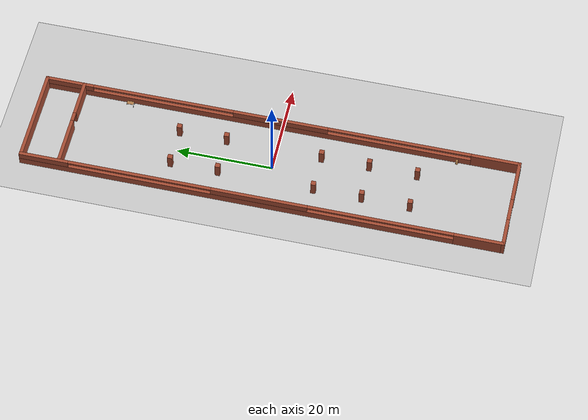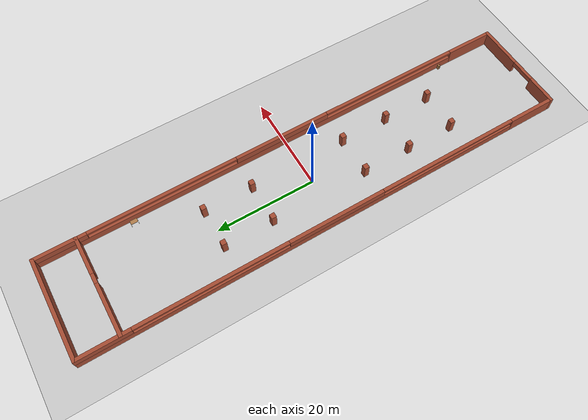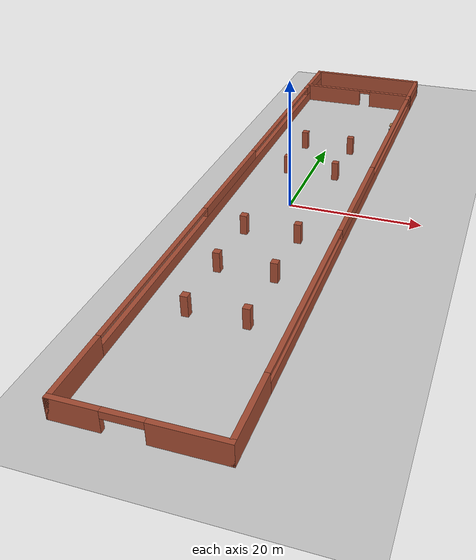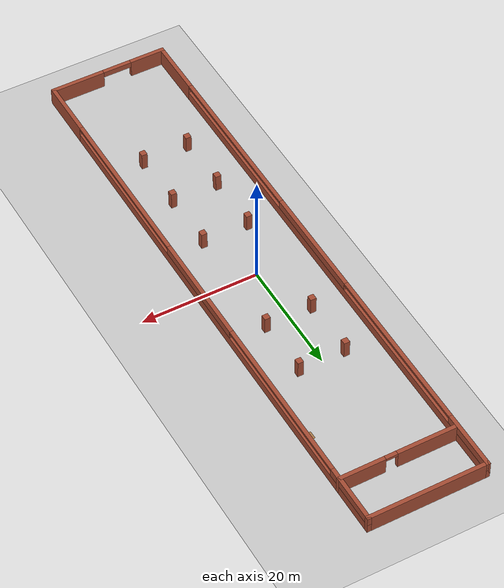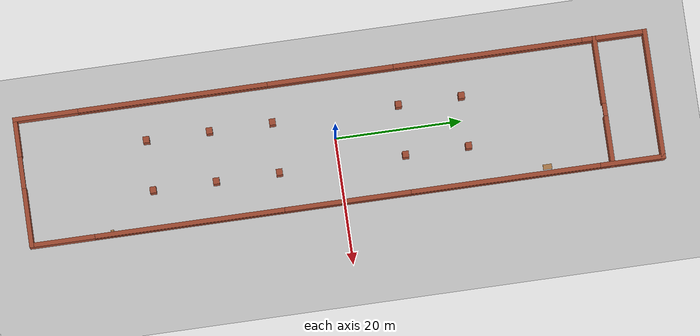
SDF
<sdf version="1.6">
 <world name="default">
  <model name="ground_plane">
   <static>1</static>
   <link name="link">
    <collision name="collision">
     <geometry><plane><normal>0 0 1</normal><size>100 100</size></plane></geometry>
     <surface><friction><ode><mu>100</mu><mu2>50</mu2></ode></friction></surface>
    </collision>
    <visual name="visual">
     <cast_shadows>0</cast_shadows>
     <geometry><plane><normal>0 0 1</normal><size>100 100</size></plane></geometry>
     <material>
      <script><uri>file://media/materials/scripts/gazebo.material</uri><name>Gazebo/Grey</name></script>
     </material>
    </visual>
   </link>
  </model>
  <model name="FactoryWorldModel">
   <pose>0.257008 0.5002 0 0 -0 0</pose>
   <link name="Wall_10">
    <pose>0 -50 0 0 -0 0</pose>
    <visual name="Wall_10_Visual_0">
     <pose>-7.19666 0 1.5 0 -0 0</pose>
     <geometry><box><size>6.30668 0.7 3</size></box></geometry>
     <material>
      <script><uri>file://media/materials/scripts/gazebo.material</uri><name>Gazebo/Bricks</name></script>
      <ambient>1 1 1 1</ambient>
     </material>
    </visual>
    <collision name="Wall_10_Collision_0">
     <geometry><box><size>6.30668 0.7 3</size></box></geometry>
     <pose>-7.19666 0 1.5 0 -0 0</pose>
    </collision>
    <visual name="Wall_10_Visual_1">
     <pose>5.65334 0 1.5 0 -0 0</pose>
     <geometry><box><size>9.39332 0.7 3</size></box></geometry>
     <material>
      <script><uri>file://media/materials/scripts/gazebo.material</uri><name>Gazebo/Bricks</name></script>
      <ambient>1 1 1 1</ambient>
     </material>
    </visual>
    <collision name="Wall_10_Collision_1">
     <geometry><box><size>9.39332 0.7 3</size></box></geometry>
     <pose>5.65334 0 1.5 0 -0 0</pose>
    </collision>
    <visual name="Wall_10_Visual_2">
     <pose>-1.54332 0 2.5 0 -0 0</pose>
     <geometry><box><size>5 0.7 1</size></box></geometry>
     <material>
      <script><uri>file://media/materials/scripts/gazebo.material</uri><name>Gazebo/Bricks</name></script>
      <ambient>1 1 1 1</ambient>
     </material>
    </visual>
    <collision name="Wall_10_Collision_2">
     <geometry><box><size>5 0.7 1</size></box></geometry>
     <pose>-1.54332 0 2.5 0 -0 0</pose>
    </collision>
   </link>
   <link name="Wall_14">
    <collision name="Wall_14_Collision">
     <geometry><box><size>1 1 3</size></box></geometry>
     <pose>0 0 1.5 0 -0 0</pose>
    </collision>
    <visual name="Wall_14_Visual">
     <pose>0 0 1.5 0 -0 0</pose>
     <geometry><box><size>1 1 3</size></box></geometry>
     <material>
      <script><uri>file://media/materials/scripts/gazebo.material</uri><name>Gazebo/Bricks</name></script>
      <ambient>1 1 1 1</ambient>
     </material>
    </visual>
    <pose>4 -30 0 0 -0 0</pose>
   </link>
   <link name="Wall_16">
    <collision name="Wall_16_Collision">
     <geometry><box><size>1 1 3</size></box></geometry>
     <pose>0 0 1.5 0 -0 0</pose>
    </collision>
    <visual name="Wall_16_Visual">
     <pose>0 0 1.5 0 -0 0</pose>
     <geometry><box><size>1 1 3</size></box></geometry>
     <material>
      <script><uri>file://media/materials/scripts/gazebo.material</uri><name>Gazebo/Bricks</name></script>
      <ambient>1 1 1 1</ambient>
     </material>
    </visual>
    <pose>-4 -30 0 0 -0 0</pose>
   </link>
   <link name="Wall_18">
    <collision name="Wall_18_Collision">
     <geometry><box><size>1 1 3</size></box></geometry>
     <pose>0 0 1.5 0 -0 0</pose>
    </collision>
    <visual name="Wall_18_Visual">
     <pose>0 0 1.5 0 -0 0</pose>
     <geometry><box><size>1 1 3</size></box></geometry>
     <material>
      <script><uri>file://media/materials/scripts/gazebo.material</uri><name>Gazebo/Bricks</name></script>
      <ambient>1 1 1 1</ambient>
     </material>
    </visual>
    <pose>-4 -20 0 0 -0 0</pose>
   </link>
   <link name="Wall_2">
    <collision name="Wall_2_Collision">
     <geometry><box><size>20.7 0.7 3</size></box></geometry>
     <pose>0 0 1.5 0 -0 0</pose>
    </collision>
    <visual name="Wall_2_Visual">
     <pose>0 0 1.5 0 -0 0</pose>
     <geometry><box><size>20.7 0.7 3</size></box></geometry>
     <material>
      <script><uri>file://media/materials/scripts/gazebo.material</uri><name>Gazebo/Bricks</name></script>
      <ambient>1 1 1 1</ambient>
     </material>
    </visual>
    <pose>0 50 0 0 -0 0</pose>
   </link>
   <link name="Wall_20">
    <collision name="Wall_20_Collision">
     <geometry><box><size>1 1 3</size></box></geometry>
     <pose>0 0 1.5 0 -0 0</pose>
    </collision>
    <visual name="Wall_20_Visual">
     <pose>0 0 1.5 0 -0 0</pose>
     <geometry><box><size>1 1 3</size></box></geometry>
     <material>
      <script><uri>file://media/materials/scripts/gazebo.material</uri><name>Gazebo/Bricks</name></script>
      <ambient>1 1 1 1</ambient>
     </material>
    </visual>
    <pose>4 -20 0 0 -0 0</pose>
   </link>
   <link name="Wall_22">
    <collision name="Wall_22_Collision">
     <geometry><box><size>1 1 3</size></box></geometry>
     <pose>0 0 1.5 0 -0 0</pose>
    </collision>
    <visual name="Wall_22_Visual">
     <pose>0 0 1.5 0 -0 0</pose>
     <geometry><box><size>1 1 3</size></box></geometry>
     <material>
      <script><uri>file://media/materials/scripts/gazebo.material</uri><name>Gazebo/Bricks</name></script>
      <ambient>1 1 1 1</ambient>
     </material>
    </visual>
    <pose>-4 -10 0 0 -0 0</pose>
   </link>
   <link name="Wall_24">
    <collision name="Wall_24_Collision">
     <geometry><box><size>1 1 3</size></box></geometry>
     <pose>0 0 1.5 0 -0 0</pose>
    </collision>
    <visual name="Wall_24_Visual">
     <pose>0 0 1.5 0 -0 0</pose>
     <geometry><box><size>1 1 3</size></box></geometry>
     <material>
      <script><uri>file://media/materials/scripts/gazebo.material</uri><name>Gazebo/Bricks</name></script>
      <ambient>1 1 1 1</ambient>
     </material>
    </visual>
    <pose>4 -10 0 0 -0 0</pose>
   </link>
   <link name="Wall_26">
    <collision name="Wall_26_Collision">
     <geometry><box><size>1 1 3</size></box></geometry>
     <pose>0 0 1.5 0 -0 0</pose>
    </collision>
    <visual name="Wall_26_Visual">
     <pose>0 0 1.5 0 -0 0</pose>
     <geometry><box><size>1 1 3</size></box></geometry>
     <material>
      <script><uri>file://media/materials/scripts/gazebo.material</uri><name>Gazebo/Bricks</name></script>
      <ambient>1 1 1 1</ambient>
     </material>
    </visual>
    <pose>-4 10 0 0 -0 0</pose>
   </link>
   <link name="Wall_28">
    <collision name="Wall_28_Collision">
     <geometry><box><size>1 1 3</size></box></geometry>
     <pose>0 0 1.5 0 -0 0</pose>
    </collision>
    <visual name="Wall_28_Visual">
     <pose>0 0 1.5 0 -0 0</pose>
     <geometry><box><size>1 1 3</size></box></geometry>
     <material>
      <script><uri>file://media/materials/scripts/gazebo.material</uri><name>Gazebo/Bricks</name></script>
      <ambient>1 1 1 1</ambient>
     </material>
    </visual>
    <pose>4 10 0 0 -0 0</pose>
   </link>
   <link name="Wall_31">
    <collision name="Wall_31_Collision">
     <geometry><box><size>1 1 3</size></box></geometry>
     <pose>0 0 1.5 0 -0 0</pose>
    </collision>
    <visual name="Wall_31_Visual">
     <pose>0 0 1.5 0 -0 0</pose>
     <geometry><box><size>1 1 3</size></box></geometry>
     <material>
      <script><uri>file://media/materials/scripts/gazebo.material</uri><name>Gazebo/Bricks</name></script>
      <ambient>1 1 1 1</ambient>
     </material>
    </visual>
    <pose>4 20 0 0 -0 0</pose>
   </link>
   <link name="Wall_33">
    <collision name="Wall_33_Collision">
     <geometry><box><size>1 1 3</size></box></geometry>
     <pose>0 0 1.5 0 -0 0</pose>
    </collision>
    <visual name="Wall_33_Visual">
     <pose>0 0 1.5 0 -0 0</pose>
     <geometry><box><size>1 1 3</size></box></geometry>
     <material>
      <script><uri>file://media/materials/scripts/gazebo.material</uri><name>Gazebo/Bricks</name></script>
      <ambient>1 1 1 1</ambient>
     </material>
    </visual>
    <pose>-4 20 0 0 -0 0</pose>
   </link>
   <link name="Wall_37">
    <pose>0 42 0 0 -0 0</pose>
    <visual name="Wall_37_Visual_0">
     <pose>-4.97882 0 1.5 0 -0 0</pose>
     <geometry><box><size>10.7424 0.7 3</size></box></geometry>
     <material>
      <script><uri>file://media/materials/scripts/gazebo.material</uri><name>Gazebo/Bricks</name></script>
      <ambient>1 1 1 1</ambient>
     </material>
    </visual>
    <collision name="Wall_37_Collision_0">
     <geometry><box><size>10.7424 0.7 3</size></box></geometry>
     <pose>-4.97882 0 1.5 0 -0 0</pose>
    </collision>
    <visual name="Wall_37_Visual_1">
     <pose>6.37118 0 1.5 0 -0 0</pose>
     <geometry><box><size>7.95763 0.7 3</size></box></geometry>
     <material>
      <script><uri>file://media/materials/scripts/gazebo.material</uri><name>Gazebo/Bricks</name></script>
      <ambient>1 1 1 1</ambient>
     </material>
    </visual>
    <collision name="Wall_37_Collision_1">
     <geometry><box><size>7.95763 0.7 3</size></box></geometry>
     <pose>6.37118 0 1.5 0 -0 0</pose>
    </collision>
    <visual name="Wall_37_Visual_2">
     <pose>1.39237 0 2.75 0 -0 0</pose>
     <geometry><box><size>2 0.7 0.5</size></box></geometry>
     <material>
      <script><uri>file://media/materials/scripts/gazebo.material</uri><name>Gazebo/Bricks</name></script>
      <ambient>1 1 1 1</ambient>
     </material>
    </visual>
    <collision name="Wall_37_Collision_2">
     <geometry><box><size>2 0.7 0.5</size></box></geometry>
     <pose>1.39237 0 2.75 0 -0 0</pose>
    </collision>
   </link>
   <link name="Wall_4">
    <pose>10 0 0 0 -0 1.5708</pose>
    <visual name="Wall_4_Visual_0">
     <pose>-45.175 0 1.5 0 -0 0</pose>
     <geometry><box><size>10.35 0.7 3</size></box></geometry>
     <material>
      <script><uri>file://media/materials/scripts/gazebo.material</uri><name>Gazebo/Bricks</name></script>
      <ambient>1 1 1 1</ambient>
     </material>
    </visual>
    <collision name="Wall_4_Collision_0">
     <geometry><box><size>10.35 0.7 3</size></box></geometry>
     <pose>-45.175 0 1.5 0 -0 0</pose>
    </collision>
    <visual name="Wall_4_Visual_1">
     <pose>5.175 0 0.8 0 -0 0</pose>
     <geometry><box><size>90.35 0.7 1.6</size></box></geometry>
     <material>
      <script><uri>file://media/materials/scripts/gazebo.material</uri><name>Gazebo/Bricks</name></script>
      <ambient>1 1 1 1</ambient>
     </material>
    </visual>
    <collision name="Wall_4_Collision_1">
     <geometry><box><size>90.35 0.7 1.6</size></box></geometry>
     <pose>5.175 0 0.8 0 -0 0</pose>
    </collision>
    <visual name="Wall_4_Visual_2">
     <pose>0 0 2.3 0 -0 0</pose>
     <geometry><box><size>20 0.7 1.4</size></box></geometry>
     <material>
      <script><uri>file://media/materials/scripts/gazebo.material</uri><name>Gazebo/Bricks</name></script>
      <ambient>1 1 1 1</ambient>
     </material>
    </visual>
    <collision name="Wall_4_Collision_2">
     <geometry><box><size>20 0.7 1.4</size></box></geometry>
     <pose>0 0 2.3 0 -0 0</pose>
    </collision>
    <visual name="Wall_4_Visual_3">
     <pose>45.175 0 2.3 0 -0 0</pose>
     <geometry><box><size>10.35 0.7 1.4</size></box></geometry>
     <material>
      <script><uri>file://media/materials/scripts/gazebo.material</uri><name>Gazebo/Bricks</name></script>
      <ambient>1 1 1 1</ambient>
     </material>
    </visual>
    <collision name="Wall_4_Collision_3">
     <geometry><box><size>10.35 0.7 1.4</size></box></geometry>
     <pose>45.175 0 2.3 0 -0 0</pose>
    </collision>
    <visual name="Wall_4_Visual_4">
     <pose>-25 0 2.8 0 -0 0</pose>
     <geometry><box><size>30 0.7 0.4</size></box></geometry>
     <material>
      <script><uri>file://media/materials/scripts/gazebo.material</uri><name>Gazebo/Bricks</name></script>
      <ambient>1 1 1 1</ambient>
     </material>
    </visual>
    <collision name="Wall_4_Collision_4">
     <geometry><box><size>30 0.7 0.4</size></box></geometry>
     <pose>-25 0 2.8 0 -0 0</pose>
    </collision>
    <visual name="Wall_4_Visual_5">
     <pose>25 0 2.8 0 -0 0</pose>
     <geometry><box><size>30 0.7 0.4</size></box></geometry>
     <material>
      <script><uri>file://media/materials/scripts/gazebo.material</uri><name>Gazebo/Bricks</name></script>
      <ambient>1 1 1 1</ambient>
     </material>
    </visual>
    <collision name="Wall_4_Collision_5">
     <geometry><box><size>30 0.7 0.4</size></box></geometry>
     <pose>25 0 2.8 0 -0 0</pose>
    </collision>
   </link>
   <link name="Wall_6">
    <pose>-10 0 0 0 -0 1.5708</pose>
    <visual name="Wall_6_Visual_0">
     <pose>-45.175 0 1.5 0 -0 0</pose>
     <geometry><box><size>10.35 0.7 3</size></box></geometry>
     <material>
      <script><uri>file://media/materials/scripts/gazebo.material</uri><name>Gazebo/Bricks</name></script>
      <ambient>1 1 1 1</ambient>
     </material>
    </visual>
    <collision name="Wall_6_Collision_0">
     <geometry><box><size>10.35 0.7 3</size></box></geometry>
     <pose>-45.175 0 1.5 0 -0 0</pose>
    </collision>
    <visual name="Wall_6_Visual_1">
     <pose>5.175 0 0.8 0 -0 0</pose>
     <geometry><box><size>90.35 0.7 1.6</size></box></geometry>
     <material>
      <script><uri>file://media/materials/scripts/gazebo.material</uri><name>Gazebo/Bricks</name></script>
      <ambient>1 1 1 1</ambient>
     </material>
    </visual>
    <collision name="Wall_6_Collision_1">
     <geometry><box><size>90.35 0.7 1.6</size></box></geometry>
     <pose>5.175 0 0.8 0 -0 0</pose>
    </collision>
    <visual name="Wall_6_Visual_2">
     <pose>0 0 2.3 0 -0 0</pose>
     <geometry><box><size>20 0.7 1.4</size></box></geometry>
     <material>
      <script><uri>file://media/materials/scripts/gazebo.material</uri><name>Gazebo/Bricks</name></script>
      <ambient>1 1 1 1</ambient>
     </material>
    </visual>
    <collision name="Wall_6_Collision_2">
     <geometry><box><size>20 0.7 1.4</size></box></geometry>
     <pose>0 0 2.3 0 -0 0</pose>
    </collision>
    <visual name="Wall_6_Visual_3">
     <pose>45.175 0 2.3 0 -0 0</pose>
     <geometry><box><size>10.35 0.7 1.4</size></box></geometry>
     <material>
      <script><uri>file://media/materials/scripts/gazebo.material</uri><name>Gazebo/Bricks</name></script>
      <ambient>1 1 1 1</ambient>
     </material>
    </visual>
    <collision name="Wall_6_Collision_3">
     <geometry><box><size>10.35 0.7 1.4</size></box></geometry>
     <pose>45.175 0 2.3 0 -0 0</pose>
    </collision>
    <visual name="Wall_6_Visual_4">
     <pose>-25 0 2.8 0 -0 0</pose>
     <geometry><box><size>30 0.7 0.4</size></box></geometry>
     <material>
      <script><uri>file://media/materials/scripts/gazebo.material</uri><name>Gazebo/Bricks</name></script>
      <ambient>1 1 1 1</ambient>
     </material>
    </visual>
    <collision name="Wall_6_Collision_4">
     <geometry><box><size>30 0.7 0.4</size></box></geometry>
     <pose>-25 0 2.8 0 -0 0</pose>
    </collision>
    <visual name="Wall_6_Visual_5">
     <pose>25 0 2.8 0 -0 0</pose>
     <geometry><box><size>30 0.7 0.4</size></box></geometry>
     <material>
      <script><uri>file://media/materials/scripts/gazebo.material</uri><name>Gazebo/Bricks</name></script>
      <ambient>1 1 1 1</ambient>
     </material>
    </visual>
    <collision name="Wall_6_Collision_5">
     <geometry><box><size>30 0.7 0.4</size></box></geometry>
     <pose>25 0 2.8 0 -0 0</pose>
    </collision>
   </link>
   <static>1</static>
  </model>
  <model name="cabinet_0_clone_3">
   <static>1</static>
   <link name="cabinet_bottom_plate">
    <inertial>
     <pose>0 0 -1 0 -0 0</pose>
     <inertia><ixx>2.05</ixx><ixy>0</ixy><ixz>0</ixz><iyy>2.05</iyy><iyz>0</iyz><izz>2.05</izz></inertia>
     <mass>25</mass>
    </inertial>
    <collision name="cabinet_bottom_plate_geom">
     <pose>0 0 0.01 0 -0 0</pose>
     <geometry><box><size>0.45 0.45 0.02</size></box></geometry>
    </collision>
    <visual name="cabinet_bottom_plate_geom_visual">
     <pose>0 0 0.01 0 -0 0</pose>
     <geometry><box><size>0.45 0.45 0.02</size></box></geometry>
     <material>
      <script><uri>file://media/materials/scripts/gazebo.material</uri><name>Gazebo/Wood</name></script>
     </material>
    </visual>
    <collision name="cabinet_bottom_plate_geom_cabinet_back_plate">
     <pose>0.235 0 0.51 0 -0 0</pose>
     <geometry><box><size>0.02 0.45 1.02</size></box></geometry>
    </collision>
    <visual name="cabinet_bottom_plate_geom_cabinet_back_plate_visual">
     <pose>0.235 0 0.51 0 -0 0</pose>
     <geometry><box><size>0.02 0.45 1.02</size></box></geometry>
     <material>
      <script><uri>file://media/materials/scripts/gazebo.material</uri><name>Gazebo/Wood</name></script>
     </material>
    </visual>
    <collision name="cabinet_bottom_plate_geom_cabinet_left_plate">
     <pose>0 0.235 0.51 0 -0 0</pose>
     <geometry><box><size>0.45 0.02 1.02</size></box></geometry>
    </collision>
    <visual name="cabinet_bottom_plate_geom_cabinet_left_plate_visual">
     <pose>0 0.235 0.51 0 -0 0</pose>
     <geometry><box><size>0.45 0.02 1.02</size></box></geometry>
     <material>
      <script><uri>file://media/materials/scripts/gazebo.material</uri><name>Gazebo/Wood</name></script>
     </material>
    </visual>
    <collision name="cabinet_bottom_plate_geom_cabinet_middle_plate">
     <pose>0 0 0.51 0 -0 0</pose>
     <geometry><box><size>0.45 0.45 0.02</size></box></geometry>
    </collision>
    <visual name="cabinet_bottom_plate_geom_cabinet_middle_plate_visual">
     <pose>0 0 0.51 0 -0 0</pose>
     <geometry><box><size>0.45 0.45 0.02</size></box></geometry>
     <material>
      <script><uri>file://media/materials/scripts/gazebo.material</uri><name>Gazebo/Wood</name></script>
     </material>
    </visual>
    <collision name="cabinet_bottom_plate_geom_cabinet_right_plate">
     <pose>0 -0.235 0.51 0 -0 0</pose>
     <geometry><box><size>0.45 0.02 1.02</size></box></geometry>
    </collision>
    <visual name="cabinet_bottom_plate_geom_cabinet_right_plate_visual">
     <pose>0 -0.235 0.51 0 -0 0</pose>
     <geometry><box><size>0.45 0.02 1.02</size></box></geometry>
     <material>
      <script><uri>file://media/materials/scripts/gazebo.material</uri><name>Gazebo/Wood</name></script>
     </material>
    </visual>
    <collision name="cabinet_bottom_plate_geom_cabinet_top_plate">
     <pose>0 0 1.01 0 -0 0</pose>
     <geometry><box><size>0.45 0.45 0.02</size></box></geometry>
    </collision>
    <visual name="cabinet_bottom_plate_geom_cabinet_top_plate_visual">
     <pose>0 0 1.01 0 -0 0</pose>
     <geometry><box><size>0.45 0.45 0.02</size></box></geometry>
     <material>
      <script><uri>file://media/materials/scripts/gazebo.material</uri><name>Gazebo/Wood</name></script>
     </material>
    </visual>
   </link>
   <pose>9.65407 -36.7515 0 0 -0 0</pose>
  </model>
  <model name="table_clone_1_clone_clone_2">
   <static>0</static>
   <link name="link">
    <collision name="surface">
     <pose>0 0 1 0 -0 0</pose>
     <geometry><box><size>1.5 0.8 0.03</size></box></geometry>
     <surface><friction><ode><mu>0.6</mu><mu2>0.6</mu2></ode></friction></surface>
    </collision>
    <visual name="visual1">
     <pose>0 0 1 0 -0 0</pose>
     <geometry><box><size>1.4 0.8 0.04</size></box></geometry>
     <material>
      <script><uri>file://media/materials/scripts/gazebo.material</uri><name>Gazebo/Wood</name></script>
     </material>
    </visual>
    <collision name="front_left_leg">
     <pose>0.68 0.38 0.5 0 -0 0</pose>
     <geometry><cylinder><radius>0.02</radius><length>1</length></cylinder></geometry>
    </collision>
    <visual name="front_left_leg">
     <pose>0.68 0.38 0.5 0 -0 0</pose>
     <geometry><cylinder><radius>0.02</radius><length>1</length></cylinder></geometry>
     <material>
      <script><uri>file://media/materials/scripts/gazebo.material</uri><name>Gazebo/Grey</name></script>
     </material>
    </visual>
    <collision name="front_right_leg">
     <pose>0.68 -0.38 0.5 0 -0 0</pose>
     <geometry><cylinder><radius>0.02</radius><length>1</length></cylinder></geometry>
    </collision>
    <visual name="front_right_leg">
     <pose>0.68 -0.38 0.5 0 -0 0</pose>
     <geometry><cylinder><radius>0.02</radius><length>1</length></cylinder></geometry>
     <material>
      <script><uri>file://media/materials/scripts/gazebo.material</uri><name>Gazebo/Grey</name></script>
     </material>
    </visual>
    <collision name="back_right_leg">
     <pose>-0.68 -0.38 0.5 0 -0 0</pose>
     <geometry><cylinder><radius>0.02</radius><length>1</length></cylinder></geometry>
    </collision>
    <visual name="back_right_leg">
     <pose>-0.68 -0.38 0.5 0 -0 0</pose>
     <geometry><cylinder><radius>0.02</radius><length>1</length></cylinder></geometry>
     <material>
      <script><uri>file://media/materials/scripts/gazebo.material</uri><name>Gazebo/Grey</name></script>
     </material>
    </visual>
    <collision name="back_left_leg">
     <pose>-0.68 0.38 0.5 0 -0 0</pose>
     <geometry><cylinder><radius>0.02</radius><length>1</length></cylinder></geometry>
    </collision>
    <visual name="back_left_leg">
     <pose>-0.68 0.38 0.5 0 -0 0</pose>
     <geometry><cylinder><radius>0.02</radius><length>1</length></cylinder></geometry>
     <material>
      <script><uri>file://media/materials/scripts/gazebo.material</uri><name>Gazebo/Grey</name></script>
     </material>
    </visual>
    <inertial>
     <inertia><ixx>1</ixx><ixy>0</ixy><ixz>0</ixz><iyy>1</iyy><iyz>0</iyz><izz>1</izz></inertia>
     <mass>1</mass>
    </inertial>
   </link>
   <pose>9.15124 32.3555 -4e-06 0 -0 1.57</pose>
  </model>
 </world>
</sdf>
